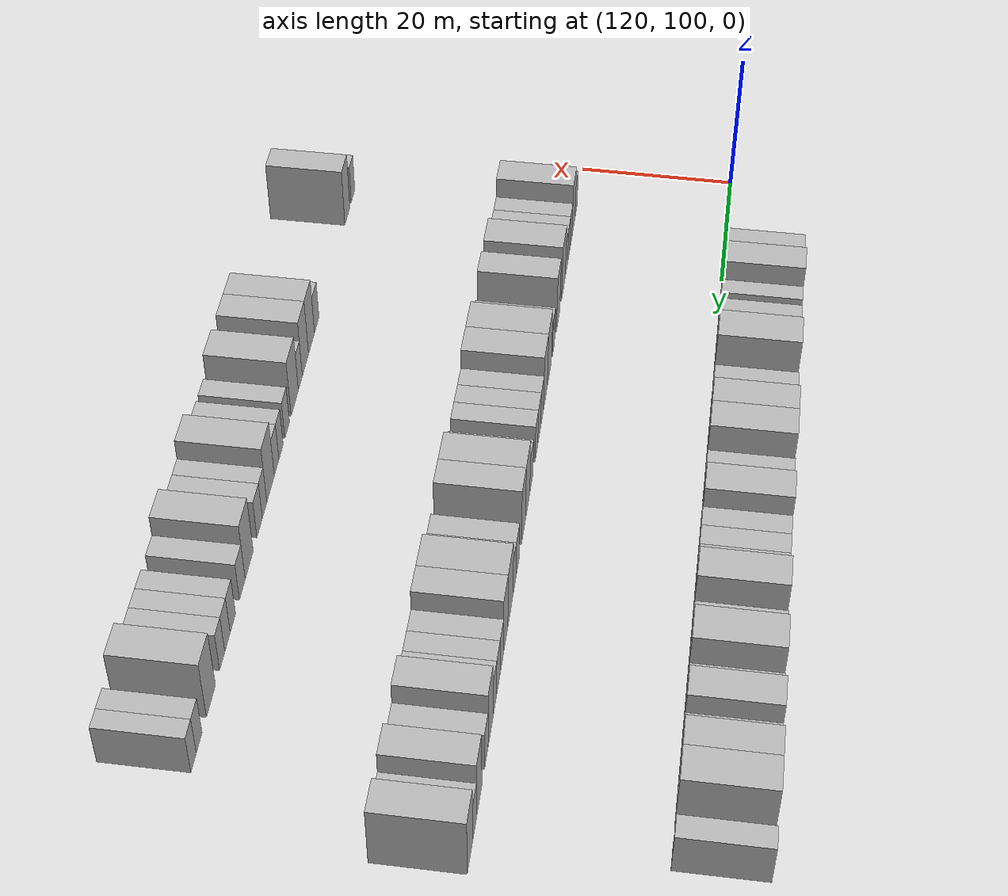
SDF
<sdf version="1.6">
 <world name="default">
  <model name="building_811">
   <static>1</static>
   <pose>115.0000 117.6299 0 0.000000 0.000000 0.000000</pose>
   <link name="link">
    <pose>0 0 3.00 0 0 0</pose>
    <collision name="collision"><geometry><box><size>10.0000 2.4569 6.0000</size></box></geometry></collision>
    <visual name="visual">
     <cast_shadows>0</cast_shadows>
     <geometry><box><size>10.0000 2.4569 6.0000</size></box></geometry>
     <material>
      <script>
       <uri>model://HANNAS_wall/materials/scripts</uri>
       <uri>model://HANNAS_wall/materials/textures</uri>
       <name>vrc/HANNAS_wall</name>
      </script>
     </material>
    </visual>
   </link>
  </model>
  <model name="building_812">
   <static>1</static>
   <pose>115.0000 120.0956 0 0.000000 0.000000 0.000000</pose>
   <link name="link">
    <pose>0 0 3.00 0 0 0</pose>
    <collision name="collision"><geometry><box><size>10.0000 2.4743 6.0000</size></box></geometry></collision>
    <visual name="visual">
     <cast_shadows>0</cast_shadows>
     <geometry><box><size>10.0000 2.4743 6.0000</size></box></geometry>
     <material>
      <script>
       <uri>model://HANNAS_wall/materials/scripts</uri>
       <uri>model://HANNAS_wall/materials/textures</uri>
       <name>vrc/HANNAS_wall</name>
      </script>
     </material>
    </visual>
   </link>
  </model>
  <model name="building_813">
   <static>1</static>
   <pose>115.0000 124.2965 0 0.000000 0.000000 0.000000</pose>
   <link name="link">
    <pose>0 0 4.50 0 0 0</pose>
    <collision name="collision"><geometry><box><size>10.0000 3.9277 9.0000</size></box></geometry></collision>
    <visual name="visual">
     <cast_shadows>0</cast_shadows>
     <geometry><box><size>10.0000 3.9277 9.0000</size></box></geometry>
     <material>
      <script>
       <uri>model://HANNAS_wall/materials/scripts</uri>
       <uri>model://HANNAS_wall/materials/textures</uri>
       <name>vrc/HANNAS_wall</name>
      </script>
     </material>
    </visual>
   </link>
  </model>
  <model name="building_814">
   <static>1</static>
   <pose>115.0000 127.4793 0 0.000000 0.000000 0.000000</pose>
   <link name="link">
    <pose>0 0 3.00 0 0 0</pose>
    <collision name="collision"><geometry><box><size>10.0000 2.4379 6.0000</size></box></geometry></collision>
    <visual name="visual">
     <cast_shadows>0</cast_shadows>
     <geometry><box><size>10.0000 2.4379 6.0000</size></box></geometry>
     <material>
      <script>
       <uri>model://HANNAS_wall/materials/scripts</uri>
       <uri>model://HANNAS_wall/materials/textures</uri>
       <name>vrc/HANNAS_wall</name>
      </script>
     </material>
    </visual>
   </link>
  </model>
  <model name="building_815">
   <static>1</static>
   <pose>115.0000 130.9316 0 0.000000 0.000000 0.000000</pose>
   <link name="link">
    <pose>0 0 3.00 0 0 0</pose>
    <collision name="collision"><geometry><box><size>10.0000 2.4667 6.0000</size></box></geometry></collision>
    <visual name="visual">
     <cast_shadows>0</cast_shadows>
     <geometry><box><size>10.0000 2.4667 6.0000</size></box></geometry>
     <material>
      <script>
       <uri>model://HANNAS_wall/materials/scripts</uri>
       <uri>model://HANNAS_wall/materials/textures</uri>
       <name>vrc/HANNAS_wall</name>
      </script>
     </material>
    </visual>
   </link>
  </model>
  <model name="building_816">
   <static>1</static>
   <pose>115.0000 133.6130 0 0.000000 0.000000 0.000000</pose>
   <link name="link">
    <pose>0 0 3.00 0 0 0</pose>
    <collision name="collision"><geometry><box><size>10.0000 2.8961 6.0000</size></box></geometry></collision>
    <visual name="visual">
     <cast_shadows>0</cast_shadows>
     <geometry><box><size>10.0000 2.8961 6.0000</size></box></geometry>
     <material>
      <script>
       <uri>model://HANNAS_wall/materials/scripts</uri>
       <uri>model://HANNAS_wall/materials/textures</uri>
       <name>vrc/HANNAS_wall</name>
      </script>
     </material>
    </visual>
   </link>
  </model>
  <model name="building_817">
   <static>1</static>
   <pose>115.0000 137.2856 0 0.000000 0.000000 0.000000</pose>
   <link name="link">
    <pose>0 0 4.50 0 0 0</pose>
    <collision name="collision"><geometry><box><size>10.0000 4.4491 9.0000</size></box></geometry></collision>
    <visual name="visual">
     <cast_shadows>0</cast_shadows>
     <geometry><box><size>10.0000 4.4491 9.0000</size></box></geometry>
     <material>
      <script>
       <uri>model://HANNAS_wall/materials/scripts</uri>
       <uri>model://HANNAS_wall/materials/textures</uri>
       <name>vrc/HANNAS_wall</name>
      </script>
     </material>
    </visual>
   </link>
  </model>
  <model name="building_818">
   <static>1</static>
   <pose>115.0000 142.7500 0 0.000000 0.000000 0.000000</pose>
   <link name="link">
    <pose>0 0 3.00 0 0 0</pose>
    <collision name="collision"><geometry><box><size>10.0000 2.4797 6.0000</size></box></geometry></collision>
    <visual name="visual">
     <cast_shadows>0</cast_shadows>
     <geometry><box><size>10.0000 2.4797 6.0000</size></box></geometry>
     <material>
      <script>
       <uri>model://HANNAS_wall/materials/scripts</uri>
       <uri>model://HANNAS_wall/materials/textures</uri>
       <name>vrc/HANNAS_wall</name>
      </script>
     </material>
    </visual>
   </link>
  </model>
  <model name="building_819">
   <static>1</static>
   <pose>115.0000 145.3448 0 0.000000 0.000000 0.000000</pose>
   <link name="link">
    <pose>0 0 3.00 0 0 0</pose>
    <collision name="collision"><geometry><box><size>10.0000 2.7100 6.0000</size></box></geometry></collision>
    <visual name="visual">
     <cast_shadows>0</cast_shadows>
     <geometry><box><size>10.0000 2.7100 6.0000</size></box></geometry>
     <material>
      <script>
       <uri>model://HANNAS_wall/materials/scripts</uri>
       <uri>model://HANNAS_wall/materials/textures</uri>
       <name>vrc/HANNAS_wall</name>
      </script>
     </material>
    </visual>
   </link>
  </model>
  <model name="building_820">
   <static>1</static>
   <pose>115.0000 148.6079 0 0.000000 0.000000 0.000000</pose>
   <link name="link">
    <pose>0 0 4.50 0 0 0</pose>
    <collision name="collision"><geometry><box><size>10.0000 3.8161 9.0000</size></box></geometry></collision>
    <visual name="visual">
     <cast_shadows>0</cast_shadows>
     <geometry><box><size>10.0000 3.8161 9.0000</size></box></geometry>
     <material>
      <script>
       <uri>model://HANNAS_wall/materials/scripts</uri>
       <uri>model://HANNAS_wall/materials/textures</uri>
       <name>vrc/HANNAS_wall</name>
      </script>
     </material>
    </visual>
   </link>
  </model>
  <model name="building_821">
   <static>1</static>
   <pose>115.0000 152.5528 0 0.000000 0.000000 0.000000</pose>
   <link name="link">
    <pose>0 0 4.50 0 0 0</pose>
    <collision name="collision"><geometry><box><size>10.0000 4.0737 9.0000</size></box></geometry></collision>
    <visual name="visual">
     <cast_shadows>0</cast_shadows>
     <geometry><box><size>10.0000 4.0737 9.0000</size></box></geometry>
     <material>
      <script>
       <uri>model://HANNAS_wall/materials/scripts</uri>
       <uri>model://HANNAS_wall/materials/textures</uri>
       <name>vrc/HANNAS_wall</name>
      </script>
     </material>
    </visual>
   </link>
  </model>
  <model name="building_822">
   <static>1</static>
   <pose>115.0000 156.9449 0 0.000000 0.000000 0.000000</pose>
   <link name="link">
    <pose>0 0 3.00 0 0 0</pose>
    <collision name="collision"><geometry><box><size>10.0000 2.7104 6.0000</size></box></geometry></collision>
    <visual name="visual">
     <cast_shadows>0</cast_shadows>
     <geometry><box><size>10.0000 2.7104 6.0000</size></box></geometry>
     <material>
      <script>
       <uri>model://HANNAS_wall/materials/scripts</uri>
       <uri>model://HANNAS_wall/materials/textures</uri>
       <name>vrc/HANNAS_wall</name>
      </script>
     </material>
    </visual>
   </link>
  </model>
  <model name="building_823">
   <static>1</static>
   <pose>115.0000 162.3228 0 0.000000 0.000000 0.000000</pose>
   <link name="link">
    <pose>0 0 4.50 0 0 0</pose>
    <collision name="collision"><geometry><box><size>10.0000 4.0455 9.0000</size></box></geometry></collision>
    <visual name="visual">
     <cast_shadows>0</cast_shadows>
     <geometry><box><size>10.0000 4.0455 9.0000</size></box></geometry>
     <material>
      <script>
       <uri>model://HANNAS_wall/materials/scripts</uri>
       <uri>model://HANNAS_wall/materials/textures</uri>
       <name>vrc/HANNAS_wall</name>
      </script>
     </material>
    </visual>
   </link>
  </model>
  <model name="building_824">
   <static>1</static>
   <pose>115.0000 165.7076 0 0.000000 0.000000 0.000000</pose>
   <link name="link">
    <pose>0 0 3.00 0 0 0</pose>
    <collision name="collision"><geometry><box><size>10.0000 2.7241 6.0000</size></box></geometry></collision>
    <visual name="visual">
     <cast_shadows>0</cast_shadows>
     <geometry><box><size>10.0000 2.7241 6.0000</size></box></geometry>
     <material>
      <script>
       <uri>model://HANNAS_wall/materials/scripts</uri>
       <uri>model://HANNAS_wall/materials/textures</uri>
       <name>vrc/HANNAS_wall</name>
      </script>
     </material>
    </visual>
   </link>
  </model>
  <model name="building_825">
   <static>1</static>
   <pose>115.0000 168.4724 0 0.000000 0.000000 0.000000</pose>
   <link name="link">
    <pose>0 0 3.00 0 0 0</pose>
    <collision name="collision"><geometry><box><size>10.0000 2.8056 6.0000</size></box></geometry></collision>
    <visual name="visual">
     <cast_shadows>0</cast_shadows>
     <geometry><box><size>10.0000 2.8056 6.0000</size></box></geometry>
     <material>
      <script>
       <uri>model://HANNAS_wall/materials/scripts</uri>
       <uri>model://HANNAS_wall/materials/textures</uri>
       <name>vrc/HANNAS_wall</name>
      </script>
     </material>
    </visual>
   </link>
  </model>
  <model name="building_826">
   <static>1</static>
   <pose>115.0000 171.3439 0 0.000000 0.000000 0.000000</pose>
   <link name="link">
    <pose>0 0 3.00 0 0 0</pose>
    <collision name="collision"><geometry><box><size>10.0000 2.9375 6.0000</size></box></geometry></collision>
    <visual name="visual">
     <cast_shadows>0</cast_shadows>
     <geometry><box><size>10.0000 2.9375 6.0000</size></box></geometry>
     <material>
      <script>
       <uri>model://HANNAS_wall/materials/scripts</uri>
       <uri>model://HANNAS_wall/materials/textures</uri>
       <name>vrc/HANNAS_wall</name>
      </script>
     </material>
    </visual>
   </link>
  </model>
  <model name="building_827">
   <static>1</static>
   <pose>115.0000 174.8889 0 0.000000 0.000000 0.000000</pose>
   <link name="link">
    <pose>0 0 4.50 0 0 0</pose>
    <collision name="collision"><geometry><box><size>10.0000 4.1524 9.0000</size></box></geometry></collision>
    <visual name="visual">
     <cast_shadows>0</cast_shadows>
     <geometry><box><size>10.0000 4.1524 9.0000</size></box></geometry>
     <material>
      <script>
       <uri>model://HANNAS_wall/materials/scripts</uri>
       <uri>model://HANNAS_wall/materials/textures</uri>
       <name>vrc/HANNAS_wall</name>
      </script>
     </material>
    </visual>
   </link>
  </model>
  <model name="building_828">
   <static>1</static>
   <pose>115.0000 179.4258 0 0.000000 0.000000 0.000000</pose>
   <link name="link">
    <pose>0 0 3.00 0 0 0</pose>
    <collision name="collision"><geometry><box><size>10.0000 2.9214 6.0000</size></box></geometry></collision>
    <visual name="visual">
     <cast_shadows>0</cast_shadows>
     <geometry><box><size>10.0000 2.9214 6.0000</size></box></geometry>
     <material>
      <script>
       <uri>model://HANNAS_wall/materials/scripts</uri>
       <uri>model://HANNAS_wall/materials/textures</uri>
       <name>vrc/HANNAS_wall</name>
      </script>
     </material>
    </visual>
   </link>
  </model>
  <model name="building_829">
   <static>1</static>
   <pose>115.0000 183.1251 0 0.000000 0.000000 0.000000</pose>
   <link name="link">
    <pose>0 0 4.50 0 0 0</pose>
    <collision name="collision"><geometry><box><size>10.0000 4.4771 9.0000</size></box></geometry></collision>
    <visual name="visual">
     <cast_shadows>0</cast_shadows>
     <geometry><box><size>10.0000 4.4771 9.0000</size></box></geometry>
     <material>
      <script>
       <uri>model://HANNAS_wall/materials/scripts</uri>
       <uri>model://HANNAS_wall/materials/textures</uri>
       <name>vrc/HANNAS_wall</name>
      </script>
     </material>
    </visual>
   </link>
  </model>
  <model name="building_830">
   <static>1</static>
   <pose>115.0000 187.6488 0 0.000000 0.000000 0.000000</pose>
   <link name="link">
    <pose>0 0 3.00 0 0 0</pose>
    <collision name="collision"><geometry><box><size>10.0000 2.5704 6.0000</size></box></geometry></collision>
    <visual name="visual">
     <cast_shadows>0</cast_shadows>
     <geometry><box><size>10.0000 2.5704 6.0000</size></box></geometry>
     <material>
      <script>
       <uri>model://HANNAS_wall/materials/scripts</uri>
       <uri>model://HANNAS_wall/materials/textures</uri>
       <name>vrc/HANNAS_wall</name>
      </script>
     </material>
    </visual>
   </link>
  </model>
  <model name="building_831">
   <static>1</static>
   <pose>115.0000 190.8429 0 0.000000 0.000000 0.000000</pose>
   <link name="link">
    <pose>0 0 4.50 0 0 0</pose>
    <collision name="collision"><geometry><box><size>10.0000 3.8178 9.0000</size></box></geometry></collision>
    <visual name="visual">
     <cast_shadows>0</cast_shadows>
     <geometry><box><size>10.0000 3.8178 9.0000</size></box></geometry>
     <material>
      <script>
       <uri>model://HANNAS_wall/materials/scripts</uri>
       <uri>model://HANNAS_wall/materials/textures</uri>
       <name>vrc/HANNAS_wall</name>
      </script>
     </material>
    </visual>
   </link>
  </model>
  <model name="building_832">
   <static>1</static>
   <pose>115.0000 193.9741 0 0.000000 0.000000 0.000000</pose>
   <link name="link">
    <pose>0 0 3.00 0 0 0</pose>
    <collision name="collision"><geometry><box><size>10.0000 2.4446 6.0000</size></box></geometry></collision>
    <visual name="visual">
     <cast_shadows>0</cast_shadows>
     <geometry><box><size>10.0000 2.4446 6.0000</size></box></geometry>
     <material>
      <script>
       <uri>model://HANNAS_wall/materials/scripts</uri>
       <uri>model://HANNAS_wall/materials/textures</uri>
       <name>vrc/HANNAS_wall</name>
      </script>
     </material>
    </visual>
   </link>
  </model>
  <model name="building_833">
   <static>1</static>
   <pose>115.0000 197.0116 0 0.000000 0.000000 0.000000</pose>
   <link name="link">
    <pose>0 0 4.50 0 0 0</pose>
    <collision name="collision"><geometry><box><size>10.0000 3.6303 9.0000</size></box></geometry></collision>
    <visual name="visual">
     <cast_shadows>0</cast_shadows>
     <geometry><box><size>10.0000 3.6303 9.0000</size></box></geometry>
     <material>
      <script>
       <uri>model://HANNAS_wall/materials/scripts</uri>
       <uri>model://HANNAS_wall/materials/textures</uri>
       <name>vrc/HANNAS_wall</name>
      </script>
     </material>
    </visual>
   </link>
  </model>
  <model name="building_834">
   <static>1</static>
   <pose>115.0000 200.9561 0 0.000000 0.000000 0.000000</pose>
   <link name="link">
    <pose>0 0 4.50 0 0 0</pose>
    <collision name="collision"><geometry><box><size>10.0000 4.2588 9.0000</size></box></geometry></collision>
    <visual name="visual">
     <cast_shadows>0</cast_shadows>
     <geometry><box><size>10.0000 4.2588 9.0000</size></box></geometry>
     <material>
      <script>
       <uri>model://HANNAS_wall/materials/scripts</uri>
       <uri>model://HANNAS_wall/materials/textures</uri>
       <name>vrc/HANNAS_wall</name>
      </script>
     </material>
    </visual>
   </link>
  </model>
  <model name="building_835">
   <static>1</static>
   <pose>115.0000 206.4402 0 0.000000 0.000000 0.000000</pose>
   <link name="link">
    <pose>0 0 3.00 0 0 0</pose>
    <collision name="collision"><geometry><box><size>10.0000 2.7092 6.0000</size></box></geometry></collision>
    <visual name="visual">
     <cast_shadows>0</cast_shadows>
     <geometry><box><size>10.0000 2.7092 6.0000</size></box></geometry>
     <material>
      <script>
       <uri>model://HANNAS_wall/materials/scripts</uri>
       <uri>model://HANNAS_wall/materials/textures</uri>
       <name>vrc/HANNAS_wall</name>
      </script>
     </material>
    </visual>
   </link>
  </model>
  <model name="building_1033">
   <static>1</static>
   <pose>145.0000 109.1060 0 0.000000 0.000000 0.000000</pose>
   <link name="link">
    <pose>0 0 3.00 0 0 0</pose>
    <collision name="collision"><geometry><box><size>10.0000 2.8253 6.0000</size></box></geometry></collision>
    <visual name="visual">
     <cast_shadows>0</cast_shadows>
     <geometry><box><size>10.0000 2.8253 6.0000</size></box></geometry>
     <material>
      <script>
       <uri>model://HANNAS_wall/materials/scripts</uri>
       <uri>model://HANNAS_wall/materials/textures</uri>
       <name>vrc/HANNAS_wall</name>
      </script>
     </material>
    </visual>
   </link>
  </model>
  <model name="building_1034">
   <static>1</static>
   <pose>145.0000 112.4350 0 0.000000 0.000000 0.000000</pose>
   <link name="link">
    <pose>0 0 4.50 0 0 0</pose>
    <collision name="collision"><geometry><box><size>10.0000 3.8327 9.0000</size></box></geometry></collision>
    <visual name="visual">
     <cast_shadows>0</cast_shadows>
     <geometry><box><size>10.0000 3.8327 9.0000</size></box></geometry>
     <material>
      <script>
       <uri>model://HANNAS_wall/materials/scripts</uri>
       <uri>model://HANNAS_wall/materials/textures</uri>
       <name>vrc/HANNAS_wall</name>
      </script>
     </material>
    </visual>
   </link>
  </model>
  <model name="building_1035">
   <static>1</static>
   <pose>145.0000 115.6461 0 0.000000 0.000000 0.000000</pose>
   <link name="link">
    <pose>0 0 3.00 0 0 0</pose>
    <collision name="collision"><geometry><box><size>10.0000 2.5895 6.0000</size></box></geometry></collision>
    <visual name="visual">
     <cast_shadows>0</cast_shadows>
     <geometry><box><size>10.0000 2.5895 6.0000</size></box></geometry>
     <material>
      <script>
       <uri>model://HANNAS_wall/materials/scripts</uri>
       <uri>model://HANNAS_wall/materials/textures</uri>
       <name>vrc/HANNAS_wall</name>
      </script>
     </material>
    </visual>
   </link>
  </model>
  <model name="building_1036">
   <static>1</static>
   <pose>145.0000 118.1855 0 0.000000 0.000000 0.000000</pose>
   <link name="link">
    <pose>0 0 3.00 0 0 0</pose>
    <collision name="collision"><geometry><box><size>10.0000 2.4893 6.0000</size></box></geometry></collision>
    <visual name="visual">
     <cast_shadows>0</cast_shadows>
     <geometry><box><size>10.0000 2.4893 6.0000</size></box></geometry>
     <material>
      <script>
       <uri>model://HANNAS_wall/materials/scripts</uri>
       <uri>model://HANNAS_wall/materials/textures</uri>
       <name>vrc/HANNAS_wall</name>
      </script>
     </material>
    </visual>
   </link>
  </model>
  <model name="building_1037">
   <static>1</static>
   <pose>145.0000 120.8018 0 0.000000 0.000000 0.000000</pose>
   <link name="link">
    <pose>0 0 3.00 0 0 0</pose>
    <collision name="collision"><geometry><box><size>10.0000 2.7432 6.0000</size></box></geometry></collision>
    <visual name="visual">
     <cast_shadows>0</cast_shadows>
     <geometry><box><size>10.0000 2.7432 6.0000</size></box></geometry>
     <material>
      <script>
       <uri>model://HANNAS_wall/materials/scripts</uri>
       <uri>model://HANNAS_wall/materials/textures</uri>
       <name>vrc/HANNAS_wall</name>
      </script>
     </material>
    </visual>
   </link>
  </model>
  <model name="building_1038">
   <static>1</static>
   <pose>145.0000 124.3320 0 0.000000 0.000000 0.000000</pose>
   <link name="link">
    <pose>0 0 4.50 0 0 0</pose>
    <collision name="collision"><geometry><box><size>10.0000 4.3174 9.0000</size></box></geometry></collision>
    <visual name="visual">
     <cast_shadows>0</cast_shadows>
     <geometry><box><size>10.0000 4.3174 9.0000</size></box></geometry>
     <material>
      <script>
       <uri>model://HANNAS_wall/materials/scripts</uri>
       <uri>model://HANNAS_wall/materials/textures</uri>
       <name>vrc/HANNAS_wall</name>
      </script>
     </material>
    </visual>
   </link>
  </model>
  <model name="building_1039">
   <static>1</static>
   <pose>145.0000 130.3704 0 0.000000 0.000000 0.000000</pose>
   <link name="link">
    <pose>0 0 4.50 0 0 0</pose>
    <collision name="collision"><geometry><box><size>10.0000 3.7595 9.0000</size></box></geometry></collision>
    <visual name="visual">
     <cast_shadows>0</cast_shadows>
     <geometry><box><size>10.0000 3.7595 9.0000</size></box></geometry>
     <material>
      <script>
       <uri>model://HANNAS_wall/materials/scripts</uri>
       <uri>model://HANNAS_wall/materials/textures</uri>
       <name>vrc/HANNAS_wall</name>
      </script>
     </material>
    </visual>
   </link>
  </model>
  <model name="building_1040">
   <static>1</static>
   <pose>145.0000 135.4991 0 0.000000 0.000000 0.000000</pose>
   <link name="link">
    <pose>0 0 3.00 0 0 0</pose>
    <collision name="collision"><geometry><box><size>10.0000 2.4978 6.0000</size></box></geometry></collision>
    <visual name="visual">
     <cast_shadows>0</cast_shadows>
     <geometry><box><size>10.0000 2.4978 6.0000</size></box></geometry>
     <material>
      <script>
       <uri>model://HANNAS_wall/materials/scripts</uri>
       <uri>model://HANNAS_wall/materials/textures</uri>
       <name>vrc/HANNAS_wall</name>
      </script>
     </material>
    </visual>
   </link>
  </model>
  <model name="building_1041">
   <static>1</static>
   <pose>145.0000 139.9459 0 0.000000 0.000000 0.000000</pose>
   <link name="link">
    <pose>0 0 4.50 0 0 0</pose>
    <collision name="collision"><geometry><box><size>10.0000 4.3958 9.0000</size></box></geometry></collision>
    <visual name="visual">
     <cast_shadows>0</cast_shadows>
     <geometry><box><size>10.0000 4.3958 9.0000</size></box></geometry>
     <material>
      <script>
       <uri>model://HANNAS_wall/materials/scripts</uri>
       <uri>model://HANNAS_wall/materials/textures</uri>
       <name>vrc/HANNAS_wall</name>
      </script>
     </material>
    </visual>
   </link>
  </model>
  <model name="building_1042">
   <static>1</static>
   <pose>145.0000 144.2066 0 0.000000 0.000000 0.000000</pose>
   <link name="link">
    <pose>0 0 4.50 0 0 0</pose>
    <collision name="collision"><geometry><box><size>10.0000 4.1258 9.0000</size></box></geometry></collision>
    <visual name="visual">
     <cast_shadows>0</cast_shadows>
     <geometry><box><size>10.0000 4.1258 9.0000</size></box></geometry>
     <material>
      <script>
       <uri>model://HANNAS_wall/materials/scripts</uri>
       <uri>model://HANNAS_wall/materials/textures</uri>
       <name>vrc/HANNAS_wall</name>
      </script>
     </material>
    </visual>
   </link>
  </model>
  <model name="building_1043">
   <static>1</static>
   <pose>145.0000 147.6546 0 0.000000 0.000000 0.000000</pose>
   <link name="link">
    <pose>0 0 3.00 0 0 0</pose>
    <collision name="collision"><geometry><box><size>10.0000 2.7703 6.0000</size></box></geometry></collision>
    <visual name="visual">
     <cast_shadows>0</cast_shadows>
     <geometry><box><size>10.0000 2.7703 6.0000</size></box></geometry>
     <material>
      <script>
       <uri>model://HANNAS_wall/materials/scripts</uri>
       <uri>model://HANNAS_wall/materials/textures</uri>
       <name>vrc/HANNAS_wall</name>
      </script>
     </material>
    </visual>
   </link>
  </model>
  <model name="building_1044">
   <static>1</static>
   <pose>145.0000 150.4924 0 0.000000 0.000000 0.000000</pose>
   <link name="link">
    <pose>0 0 3.00 0 0 0</pose>
    <collision name="collision"><geometry><box><size>10.0000 2.9052 6.0000</size></box></geometry></collision>
    <visual name="visual">
     <cast_shadows>0</cast_shadows>
     <geometry><box><size>10.0000 2.9052 6.0000</size></box></geometry>
     <material>
      <script>
       <uri>model://HANNAS_wall/materials/scripts</uri>
       <uri>model://HANNAS_wall/materials/textures</uri>
       <name>vrc/HANNAS_wall</name>
      </script>
     </material>
    </visual>
   </link>
  </model>
  <model name="building_1045">
   <static>1</static>
   <pose>145.0000 153.3353 0 0.000000 0.000000 0.000000</pose>
   <link name="link">
    <pose>0 0 3.00 0 0 0</pose>
    <collision name="collision"><geometry><box><size>10.0000 2.7808 6.0000</size></box></geometry></collision>
    <visual name="visual">
     <cast_shadows>0</cast_shadows>
     <geometry><box><size>10.0000 2.7808 6.0000</size></box></geometry>
     <material>
      <script>
       <uri>model://HANNAS_wall/materials/scripts</uri>
       <uri>model://HANNAS_wall/materials/textures</uri>
       <name>vrc/HANNAS_wall</name>
      </script>
     </material>
    </visual>
   </link>
  </model>
  <model name="building_1046">
   <static>1</static>
   <pose>145.0000 158.2216 0 0.000000 0.000000 0.000000</pose>
   <link name="link">
    <pose>0 0 3.00 0 0 0</pose>
    <collision name="collision"><geometry><box><size>10.0000 2.9917 6.0000</size></box></geometry></collision>
    <visual name="visual">
     <cast_shadows>0</cast_shadows>
     <geometry><box><size>10.0000 2.9917 6.0000</size></box></geometry>
     <material>
      <script>
       <uri>model://HANNAS_wall/materials/scripts</uri>
       <uri>model://HANNAS_wall/materials/textures</uri>
       <name>vrc/HANNAS_wall</name>
      </script>
     </material>
    </visual>
   </link>
  </model>
  <model name="building_1047">
   <static>1</static>
   <pose>145.0000 161.8311 0 0.000000 0.000000 0.000000</pose>
   <link name="link">
    <pose>0 0 4.50 0 0 0</pose>
    <collision name="collision"><geometry><box><size>10.0000 4.2273 9.0000</size></box></geometry></collision>
    <visual name="visual">
     <cast_shadows>0</cast_shadows>
     <geometry><box><size>10.0000 4.2273 9.0000</size></box></geometry>
     <material>
      <script>
       <uri>model://HANNAS_wall/materials/scripts</uri>
       <uri>model://HANNAS_wall/materials/textures</uri>
       <name>vrc/HANNAS_wall</name>
      </script>
     </material>
    </visual>
   </link>
  </model>
  <model name="building_1048">
   <static>1</static>
   <pose>145.0000 165.7677 0 0.000000 0.000000 0.000000</pose>
   <link name="link">
    <pose>0 0 4.50 0 0 0</pose>
    <collision name="collision"><geometry><box><size>10.0000 3.6459 9.0000</size></box></geometry></collision>
    <visual name="visual">
     <cast_shadows>0</cast_shadows>
     <geometry><box><size>10.0000 3.6459 9.0000</size></box></geometry>
     <material>
      <script>
       <uri>model://HANNAS_wall/materials/scripts</uri>
       <uri>model://HANNAS_wall/materials/textures</uri>
       <name>vrc/HANNAS_wall</name>
      </script>
     </material>
    </visual>
   </link>
  </model>
  <model name="building_1049">
   <static>1</static>
   <pose>145.0000 171.0218 0 0.000000 0.000000 0.000000</pose>
   <link name="link">
    <pose>0 0 3.00 0 0 0</pose>
    <collision name="collision"><geometry><box><size>10.0000 2.8624 6.0000</size></box></geometry></collision>
    <visual name="visual">
     <cast_shadows>0</cast_shadows>
     <geometry><box><size>10.0000 2.8624 6.0000</size></box></geometry>
     <material>
      <script>
       <uri>model://HANNAS_wall/materials/scripts</uri>
       <uri>model://HANNAS_wall/materials/textures</uri>
       <name>vrc/HANNAS_wall</name>
      </script>
     </material>
    </visual>
   </link>
  </model>
  <model name="building_1050">
   <static>1</static>
   <pose>145.0000 173.8066 0 0.000000 0.000000 0.000000</pose>
   <link name="link">
    <pose>0 0 3.00 0 0 0</pose>
    <collision name="collision"><geometry><box><size>10.0000 2.7073 6.0000</size></box></geometry></collision>
    <visual name="visual">
     <cast_shadows>0</cast_shadows>
     <geometry><box><size>10.0000 2.7073 6.0000</size></box></geometry>
     <material>
      <script>
       <uri>model://HANNAS_wall/materials/scripts</uri>
       <uri>model://HANNAS_wall/materials/textures</uri>
       <name>vrc/HANNAS_wall</name>
      </script>
     </material>
    </visual>
   </link>
  </model>
  <model name="building_1051">
   <static>1</static>
   <pose>145.0000 177.3986 0 0.000000 0.000000 0.000000</pose>
   <link name="link">
    <pose>0 0 4.50 0 0 0</pose>
    <collision name="collision"><geometry><box><size>10.0000 4.4767 9.0000</size></box></geometry></collision>
    <visual name="visual">
     <cast_shadows>0</cast_shadows>
     <geometry><box><size>10.0000 4.4767 9.0000</size></box></geometry>
     <material>
      <script>
       <uri>model://HANNAS_wall/materials/scripts</uri>
       <uri>model://HANNAS_wall/materials/textures</uri>
       <name>vrc/HANNAS_wall</name>
      </script>
     </material>
    </visual>
   </link>
  </model>
  <model name="building_1052">
   <static>1</static>
   <pose>145.0000 181.4584 0 0.000000 0.000000 0.000000</pose>
   <link name="link">
    <pose>0 0 4.50 0 0 0</pose>
    <collision name="collision"><geometry><box><size>10.0000 3.6428 9.0000</size></box></geometry></collision>
    <visual name="visual">
     <cast_shadows>0</cast_shadows>
     <geometry><box><size>10.0000 3.6428 9.0000</size></box></geometry>
     <material>
      <script>
       <uri>model://HANNAS_wall/materials/scripts</uri>
       <uri>model://HANNAS_wall/materials/textures</uri>
       <name>vrc/HANNAS_wall</name>
      </script>
     </material>
    </visual>
   </link>
  </model>
  <model name="building_1053">
   <static>1</static>
   <pose>145.0000 184.7268 0 0.000000 0.000000 0.000000</pose>
   <link name="link">
    <pose>0 0 3.00 0 0 0</pose>
    <collision name="collision"><geometry><box><size>10.0000 2.8942 6.0000</size></box></geometry></collision>
    <visual name="visual">
     <cast_shadows>0</cast_shadows>
     <geometry><box><size>10.0000 2.8942 6.0000</size></box></geometry>
     <material>
      <script>
       <uri>model://HANNAS_wall/materials/scripts</uri>
       <uri>model://HANNAS_wall/materials/textures</uri>
       <name>vrc/HANNAS_wall</name>
      </script>
     </material>
    </visual>
   </link>
  </model>
  <model name="building_1054">
   <static>1</static>
   <pose>145.0000 187.5251 0 0.000000 0.000000 0.000000</pose>
   <link name="link">
    <pose>0 0 3.00 0 0 0</pose>
    <collision name="collision"><geometry><box><size>10.0000 2.7024 6.0000</size></box></geometry></collision>
    <visual name="visual">
     <cast_shadows>0</cast_shadows>
     <geometry><box><size>10.0000 2.7024 6.0000</size></box></geometry>
     <material>
      <script>
       <uri>model://HANNAS_wall/materials/scripts</uri>
       <uri>model://HANNAS_wall/materials/textures</uri>
       <name>vrc/HANNAS_wall</name>
      </script>
     </material>
    </visual>
   </link>
  </model>
  <model name="building_1055">
   <static>1</static>
   <pose>145.0000 190.3411 0 0.000000 0.000000 0.000000</pose>
   <link name="link">
    <pose>0 0 3.00 0 0 0</pose>
    <collision name="collision"><geometry><box><size>10.0000 2.9296 6.0000</size></box></geometry></collision>
    <visual name="visual">
     <cast_shadows>0</cast_shadows>
     <geometry><box><size>10.0000 2.9296 6.0000</size></box></geometry>
     <material>
      <script>
       <uri>model://HANNAS_wall/materials/scripts</uri>
       <uri>model://HANNAS_wall/materials/textures</uri>
       <name>vrc/HANNAS_wall</name>
      </script>
     </material>
    </visual>
   </link>
  </model>
  <model name="building_1056">
   <static>1</static>
   <pose>145.0000 193.7182 0 0.000000 0.000000 0.000000</pose>
   <link name="link">
    <pose>0 0 4.50 0 0 0</pose>
    <collision name="collision"><geometry><box><size>10.0000 3.8246 9.0000</size></box></geometry></collision>
    <visual name="visual">
     <cast_shadows>0</cast_shadows>
     <geometry><box><size>10.0000 3.8246 9.0000</size></box></geometry>
     <material>
      <script>
       <uri>model://HANNAS_wall/materials/scripts</uri>
       <uri>model://HANNAS_wall/materials/textures</uri>
       <name>vrc/HANNAS_wall</name>
      </script>
     </material>
    </visual>
   </link>
  </model>
  <model name="building_1057">
   <static>1</static>
   <pose>145.0000 197.0231 0 0.000000 0.000000 0.000000</pose>
   <link name="link">
    <pose>0 0 3.00 0 0 0</pose>
    <collision name="collision"><geometry><box><size>10.0000 2.7852 6.0000</size></box></geometry></collision>
    <visual name="visual">
     <cast_shadows>0</cast_shadows>
     <geometry><box><size>10.0000 2.7852 6.0000</size></box></geometry>
     <material>
      <script>
       <uri>model://HANNAS_wall/materials/scripts</uri>
       <uri>model://HANNAS_wall/materials/textures</uri>
       <name>vrc/HANNAS_wall</name>
      </script>
     </material>
    </visual>
   </link>
  </model>
  <model name="building_1058">
   <static>1</static>
   <pose>145.0000 202.3070 0 0.000000 0.000000 0.000000</pose>
   <link name="link">
    <pose>0 0 4.50 0 0 0</pose>
    <collision name="collision"><geometry><box><size>10.0000 3.7825 9.0000</size></box></geometry></collision>
    <visual name="visual">
     <cast_shadows>0</cast_shadows>
     <geometry><box><size>10.0000 3.7825 9.0000</size></box></geometry>
     <material>
      <script>
       <uri>model://HANNAS_wall/materials/scripts</uri>
       <uri>model://HANNAS_wall/materials/textures</uri>
       <name>vrc/HANNAS_wall</name>
      </script>
     </material>
    </visual>
   </link>
  </model>
  <model name="building_1059">
   <static>1</static>
   <pose>145.0000 205.6006 0 0.000000 0.000000 0.000000</pose>
   <link name="link">
    <pose>0 0 3.00 0 0 0</pose>
    <collision name="collision"><geometry><box><size>10.0000 2.8048 6.0000</size></box></geometry></collision>
    <visual name="visual">
     <cast_shadows>0</cast_shadows>
     <geometry><box><size>10.0000 2.8048 6.0000</size></box></geometry>
     <material>
      <script>
       <uri>model://HANNAS_wall/materials/scripts</uri>
       <uri>model://HANNAS_wall/materials/textures</uri>
       <name>vrc/HANNAS_wall</name>
      </script>
     </material>
    </visual>
   </link>
  </model>
  <model name="building_1060">
   <static>1</static>
   <pose>145.0000 208.9855 0 0.000000 0.000000 0.000000</pose>
   <link name="link">
    <pose>0 0 4.50 0 0 0</pose>
    <collision name="collision"><geometry><box><size>10.0000 3.9649 9.0000</size></box></geometry></collision>
    <visual name="visual">
     <cast_shadows>0</cast_shadows>
     <geometry><box><size>10.0000 3.9649 9.0000</size></box></geometry>
     <material>
      <script>
       <uri>model://HANNAS_wall/materials/scripts</uri>
       <uri>model://HANNAS_wall/materials/textures</uri>
       <name>vrc/HANNAS_wall</name>
      </script>
     </material>
    </visual>
   </link>
  </model>
  <model name="building_1259">
   <static>1</static>
   <pose>175.0000 109.7995 0 0.000000 0.000000 0.000000</pose>
   <link name="link">
    <pose>0 0 3.00 0 0 0</pose>
    <collision name="collision"><geometry><box><size>10.0000 2.6384 6.0000</size></box></geometry></collision>
    <visual name="visual">
     <cast_shadows>0</cast_shadows>
     <geometry><box><size>10.0000 2.6384 6.0000</size></box></geometry>
     <material>
      <script>
       <uri>model://HANNAS_wall/materials/scripts</uri>
       <uri>model://HANNAS_wall/materials/textures</uri>
       <name>vrc/HANNAS_wall</name>
      </script>
     </material>
    </visual>
   </link>
  </model>
  <model name="building_1260">
   <static>1</static>
   <pose>175.0000 113.9322 0 0.000000 0.000000 0.000000</pose>
   <link name="link">
    <pose>0 0 4.50 0 0 0</pose>
    <collision name="collision"><geometry><box><size>10.0000 3.6270 9.0000</size></box></geometry></collision>
    <visual name="visual">
     <cast_shadows>0</cast_shadows>
     <geometry><box><size>10.0000 3.6270 9.0000</size></box></geometry>
     <material>
      <script>
       <uri>model://HANNAS_wall/materials/scripts</uri>
       <uri>model://HANNAS_wall/materials/textures</uri>
       <name>vrc/HANNAS_wall</name>
      </script>
     </material>
    </visual>
   </link>
  </model>
  <model name="building_1261">
   <static>1</static>
   <pose>175.0000 135.1434 0 0.000000 0.000000 0.000000</pose>
   <link name="link">
    <pose>0 0 3.00 0 0 0</pose>
    <collision name="collision"><geometry><box><size>10.0000 2.9318 6.0000</size></box></geometry></collision>
    <visual name="visual">
     <cast_shadows>0</cast_shadows>
     <geometry><box><size>10.0000 2.9318 6.0000</size></box></geometry>
     <material>
      <script>
       <uri>model://HANNAS_wall/materials/scripts</uri>
       <uri>model://HANNAS_wall/materials/textures</uri>
       <name>vrc/HANNAS_wall</name>
      </script>
     </material>
    </visual>
   </link>
  </model>
  <model name="building_1262">
   <static>1</static>
   <pose>175.0000 138.5263 0 0.000000 0.000000 0.000000</pose>
   <link name="link">
    <pose>0 0 4.50 0 0 0</pose>
    <collision name="collision"><geometry><box><size>10.0000 3.8342 9.0000</size></box></geometry></collision>
    <visual name="visual">
     <cast_shadows>0</cast_shadows>
     <geometry><box><size>10.0000 3.8342 9.0000</size></box></geometry>
     <material>
      <script>
       <uri>model://HANNAS_wall/materials/scripts</uri>
       <uri>model://HANNAS_wall/materials/textures</uri>
       <name>vrc/HANNAS_wall</name>
      </script>
     </material>
    </visual>
   </link>
  </model>
  <model name="building_1263">
   <static>1</static>
   <pose>175.0000 142.3957 0 0.000000 0.000000 0.000000</pose>
   <link name="link">
    <pose>0 0 4.50 0 0 0</pose>
    <collision name="collision"><geometry><box><size>10.0000 3.9045 9.0000</size></box></geometry></collision>
    <visual name="visual">
     <cast_shadows>0</cast_shadows>
     <geometry><box><size>10.0000 3.9045 9.0000</size></box></geometry>
     <material>
      <script>
       <uri>model://HANNAS_wall/materials/scripts</uri>
       <uri>model://HANNAS_wall/materials/textures</uri>
       <name>vrc/HANNAS_wall</name>
      </script>
     </material>
    </visual>
   </link>
  </model>
  <model name="building_1264">
   <static>1</static>
   <pose>175.0000 145.5721 0 0.000000 0.000000 0.000000</pose>
   <link name="link">
    <pose>0 0 3.00 0 0 0</pose>
    <collision name="collision"><geometry><box><size>10.0000 2.4484 6.0000</size></box></geometry></collision>
    <visual name="visual">
     <cast_shadows>0</cast_shadows>
     <geometry><box><size>10.0000 2.4484 6.0000</size></box></geometry>
     <material>
      <script>
       <uri>model://HANNAS_wall/materials/scripts</uri>
       <uri>model://HANNAS_wall/materials/textures</uri>
       <name>vrc/HANNAS_wall</name>
      </script>
     </material>
    </visual>
   </link>
  </model>
  <model name="building_1265">
   <static>1</static>
   <pose>175.0000 149.0013 0 0.000000 0.000000 0.000000</pose>
   <link name="link">
    <pose>0 0 4.50 0 0 0</pose>
    <collision name="collision"><geometry><box><size>10.0000 4.4098 9.0000</size></box></geometry></collision>
    <visual name="visual">
     <cast_shadows>0</cast_shadows>
     <geometry><box><size>10.0000 4.4098 9.0000</size></box></geometry>
     <material>
      <script>
       <uri>model://HANNAS_wall/materials/scripts</uri>
       <uri>model://HANNAS_wall/materials/textures</uri>
       <name>vrc/HANNAS_wall</name>
      </script>
     </material>
    </visual>
   </link>
  </model>
  <model name="building_1266">
   <static>1</static>
   <pose>175.0000 153.5731 0 0.000000 0.000000 0.000000</pose>
   <link name="link">
    <pose>0 0 3.00 0 0 0</pose>
    <collision name="collision"><geometry><box><size>10.0000 2.7337 6.0000</size></box></geometry></collision>
    <visual name="visual">
     <cast_shadows>0</cast_shadows>
     <geometry><box><size>10.0000 2.7337 6.0000</size></box></geometry>
     <material>
      <script>
       <uri>model://HANNAS_wall/materials/scripts</uri>
       <uri>model://HANNAS_wall/materials/textures</uri>
       <name>vrc/HANNAS_wall</name>
      </script>
     </material>
    </visual>
   </link>
  </model>
  <model name="building_1267">
   <static>1</static>
   <pose>175.0000 157.1570 0 0.000000 0.000000 0.000000</pose>
   <link name="link">
    <pose>0 0 3.00 0 0 0</pose>
    <collision name="collision"><geometry><box><size>10.0000 2.4341 6.0000</size></box></geometry></collision>
    <visual name="visual">
     <cast_shadows>0</cast_shadows>
     <geometry><box><size>10.0000 2.4341 6.0000</size></box></geometry>
     <material>
      <script>
       <uri>model://HANNAS_wall/materials/scripts</uri>
       <uri>model://HANNAS_wall/materials/textures</uri>
       <name>vrc/HANNAS_wall</name>
      </script>
     </material>
    </visual>
   </link>
  </model>
  <model name="building_1268">
   <static>1</static>
   <pose>175.0000 159.6998 0 0.000000 0.000000 0.000000</pose>
   <link name="link">
    <pose>0 0 3.00 0 0 0</pose>
    <collision name="collision"><geometry><box><size>10.0000 2.6516 6.0000</size></box></geometry></collision>
    <visual name="visual">
     <cast_shadows>0</cast_shadows>
     <geometry><box><size>10.0000 2.6516 6.0000</size></box></geometry>
     <material>
      <script>
       <uri>model://HANNAS_wall/materials/scripts</uri>
       <uri>model://HANNAS_wall/materials/textures</uri>
       <name>vrc/HANNAS_wall</name>
      </script>
     </material>
    </visual>
   </link>
  </model>
  <model name="building_1269">
   <static>1</static>
   <pose>175.0000 163.1365 0 0.000000 0.000000 0.000000</pose>
   <link name="link">
    <pose>0 0 4.50 0 0 0</pose>
    <collision name="collision"><geometry><box><size>10.0000 4.2218 9.0000</size></box></geometry></collision>
    <visual name="visual">
     <cast_shadows>0</cast_shadows>
     <geometry><box><size>10.0000 4.2218 9.0000</size></box></geometry>
     <material>
      <script>
       <uri>model://HANNAS_wall/materials/scripts</uri>
       <uri>model://HANNAS_wall/materials/textures</uri>
       <name>vrc/HANNAS_wall</name>
      </script>
     </material>
    </visual>
   </link>
  </model>
  <model name="building_1270">
   <static>1</static>
   <pose>175.0000 166.4840 0 0.000000 0.000000 0.000000</pose>
   <link name="link">
    <pose>0 0 3.00 0 0 0</pose>
    <collision name="collision"><geometry><box><size>10.0000 2.4732 6.0000</size></box></geometry></collision>
    <visual name="visual">
     <cast_shadows>0</cast_shadows>
     <geometry><box><size>10.0000 2.4732 6.0000</size></box></geometry>
     <material>
      <script>
       <uri>model://HANNAS_wall/materials/scripts</uri>
       <uri>model://HANNAS_wall/materials/textures</uri>
       <name>vrc/HANNAS_wall</name>
      </script>
     </material>
    </visual>
   </link>
  </model>
  <model name="building_1271">
   <static>1</static>
   <pose>175.0000 169.1909 0 0.000000 0.000000 0.000000</pose>
   <link name="link">
    <pose>0 0 3.00 0 0 0</pose>
    <collision name="collision"><geometry><box><size>10.0000 2.9408 6.0000</size></box></geometry></collision>
    <visual name="visual">
     <cast_shadows>0</cast_shadows>
     <geometry><box><size>10.0000 2.9408 6.0000</size></box></geometry>
     <material>
      <script>
       <uri>model://HANNAS_wall/materials/scripts</uri>
       <uri>model://HANNAS_wall/materials/textures</uri>
       <name>vrc/HANNAS_wall</name>
      </script>
     </material>
    </visual>
   </link>
  </model>
  <model name="building_1272">
   <static>1</static>
   <pose>175.0000 174.7573 0 0.000000 0.000000 0.000000</pose>
   <link name="link">
    <pose>0 0 4.50 0 0 0</pose>
    <collision name="collision"><geometry><box><size>10.0000 4.1920 9.0000</size></box></geometry></collision>
    <visual name="visual">
     <cast_shadows>0</cast_shadows>
     <geometry><box><size>10.0000 4.1920 9.0000</size></box></geometry>
     <material>
      <script>
       <uri>model://HANNAS_wall/materials/scripts</uri>
       <uri>model://HANNAS_wall/materials/textures</uri>
       <name>vrc/HANNAS_wall</name>
      </script>
     </material>
    </visual>
   </link>
  </model>
  <model name="building_1273">
   <static>1</static>
   <pose>175.0000 178.3363 0 0.000000 0.000000 0.000000</pose>
   <link name="link">
    <pose>0 0 3.00 0 0 0</pose>
    <collision name="collision"><geometry><box><size>10.0000 2.9659 6.0000</size></box></geometry></collision>
    <visual name="visual">
     <cast_shadows>0</cast_shadows>
     <geometry><box><size>10.0000 2.9659 6.0000</size></box></geometry>
     <material>
      <script>
       <uri>model://HANNAS_wall/materials/scripts</uri>
       <uri>model://HANNAS_wall/materials/textures</uri>
       <name>vrc/HANNAS_wall</name>
      </script>
     </material>
    </visual>
   </link>
  </model>
  <model name="building_1274">
   <static>1</static>
   <pose>175.0000 183.1450 0 0.000000 0.000000 0.000000</pose>
   <link name="link">
    <pose>0 0 3.00 0 0 0</pose>
    <collision name="collision"><geometry><box><size>10.0000 2.6516 6.0000</size></box></geometry></collision>
    <visual name="visual">
     <cast_shadows>0</cast_shadows>
     <geometry><box><size>10.0000 2.6516 6.0000</size></box></geometry>
     <material>
      <script>
       <uri>model://HANNAS_wall/materials/scripts</uri>
       <uri>model://HANNAS_wall/materials/textures</uri>
       <name>vrc/HANNAS_wall</name>
      </script>
     </material>
    </visual>
   </link>
  </model>
  <model name="building_1275">
   <static>1</static>
   <pose>175.0000 185.7975 0 0.000000 0.000000 0.000000</pose>
   <link name="link">
    <pose>0 0 3.00 0 0 0</pose>
    <collision name="collision"><geometry><box><size>10.0000 2.6536 6.0000</size></box></geometry></collision>
    <visual name="visual">
     <cast_shadows>0</cast_shadows>
     <geometry><box><size>10.0000 2.6536 6.0000</size></box></geometry>
     <material>
      <script>
       <uri>model://HANNAS_wall/materials/scripts</uri>
       <uri>model://HANNAS_wall/materials/textures</uri>
       <name>vrc/HANNAS_wall</name>
      </script>
     </material>
    </visual>
   </link>
  </model>
  <model name="building_1276">
   <static>1</static>
   <pose>175.0000 188.3819 0 0.000000 0.000000 0.000000</pose>
   <link name="link">
    <pose>0 0 3.00 0 0 0</pose>
    <collision name="collision"><geometry><box><size>10.0000 2.5151 6.0000</size></box></geometry></collision>
    <visual name="visual">
     <cast_shadows>0</cast_shadows>
     <geometry><box><size>10.0000 2.5151 6.0000</size></box></geometry>
     <material>
      <script>
       <uri>model://HANNAS_wall/materials/scripts</uri>
       <uri>model://HANNAS_wall/materials/textures</uri>
       <name>vrc/HANNAS_wall</name>
      </script>
     </material>
    </visual>
   </link>
  </model>
  <model name="building_1277">
   <static>1</static>
   <pose>175.0000 193.7503 0 0.000000 0.000000 0.000000</pose>
   <link name="link">
    <pose>0 0 4.50 0 0 0</pose>
    <collision name="collision"><geometry><box><size>10.0000 4.2217 9.0000</size></box></geometry></collision>
    <visual name="visual">
     <cast_shadows>0</cast_shadows>
     <geometry><box><size>10.0000 4.2217 9.0000</size></box></geometry>
     <material>
      <script>
       <uri>model://HANNAS_wall/materials/scripts</uri>
       <uri>model://HANNAS_wall/materials/textures</uri>
       <name>vrc/HANNAS_wall</name>
      </script>
     </material>
    </visual>
   </link>
  </model>
  <model name="building_1278">
   <static>1</static>
   <pose>175.0000 199.1641 0 0.000000 0.000000 0.000000</pose>
   <link name="link">
    <pose>0 0 3.00 0 0 0</pose>
    <collision name="collision"><geometry><box><size>10.0000 2.6058 6.0000</size></box></geometry></collision>
    <visual name="visual">
     <cast_shadows>0</cast_shadows>
     <geometry><box><size>10.0000 2.6058 6.0000</size></box></geometry>
     <material>
      <script>
       <uri>model://HANNAS_wall/materials/scripts</uri>
       <uri>model://HANNAS_wall/materials/textures</uri>
       <name>vrc/HANNAS_wall</name>
      </script>
     </material>
    </visual>
   </link>
  </model>
  <model name="building_1279">
   <static>1</static>
   <pose>175.0000 201.6843 0 0.000000 0.000000 0.000000</pose>
   <link name="link">
    <pose>0 0 3.00 0 0 0</pose>
    <collision name="collision"><geometry><box><size>10.0000 2.4345 6.0000</size></box></geometry></collision>
    <visual name="visual">
     <cast_shadows>0</cast_shadows>
     <geometry><box><size>10.0000 2.4345 6.0000</size></box></geometry>
     <material>
      <script>
       <uri>model://HANNAS_wall/materials/scripts</uri>
       <uri>model://HANNAS_wall/materials/textures</uri>
       <name>vrc/HANNAS_wall</name>
      </script>
     </material>
    </visual>
   </link>
  </model>
 </world>
</sdf>
